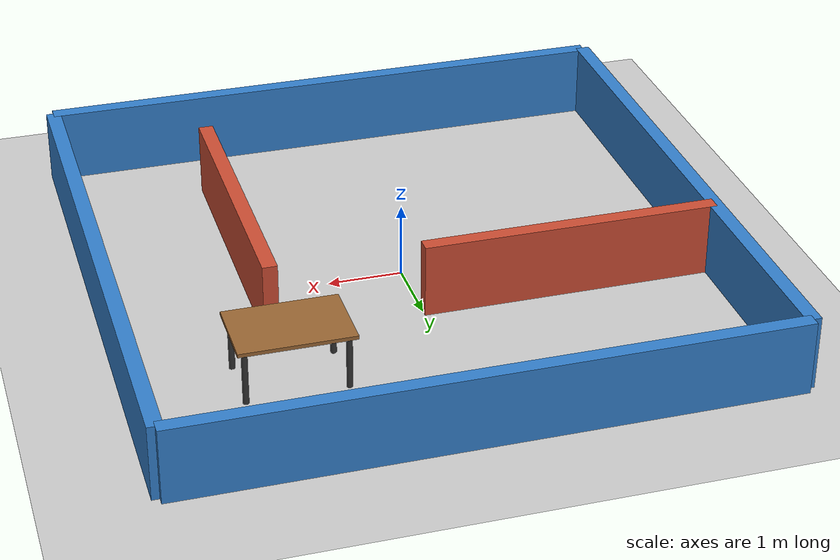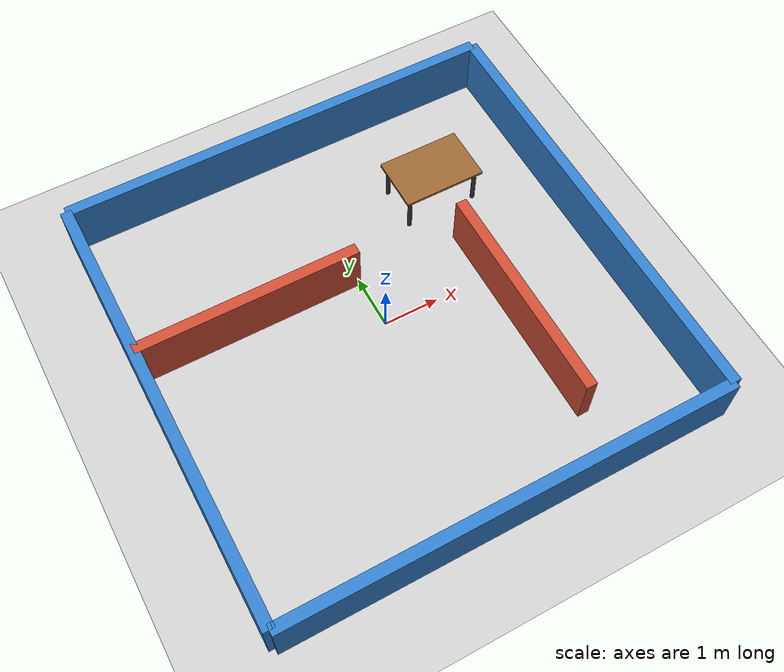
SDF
<?xml version='1.0' encoding='utf-8'?>
<sdf version='1.9'>
  <world name='maze_and_table_world'>
    <!-- PLUGINS BASE DE FÍSICAS -->
    <physics name='1ms' type='ignored'>
      <max_step_size>0.001</max_step_size>
      <real_time_factor>1</real_time_factor>
      <real_time_update_rate>1000</real_time_update_rate>
    </physics>
    <plugin name='gz::sim::systems::Physics' filename='ignition-gazebo-physics-system'/>
    <plugin name='gz::sim::systems::UserCommands' filename='ignition-gazebo-user-commands-system'/>
    <plugin name='gz::sim::systems::SceneBroadcaster' filename='ignition-gazebo-scene-broadcaster-system'/>
    <plugin name='gz::sim::systems::Contact' filename='ignition-gazebo-contact-system'/>
    <gravity>0 0 -9.8</gravity>
    <magnetic_field>6e-06 2.3e-05 -4.2e-05</magnetic_field>
    <atmosphere type='adiabatic'/>

    <scene>
      <ambient>0.4 0.4 0.4 1</ambient>
      <background>0.7 0.7 0.7 1</background>
      <shadows>true</shadows>
    </scene>

    <!-- SOL Y LUZ -->
    <light name='sun' type='directional'>
      <pose>0 0 10 0 0 0</pose>
      <cast_shadows>true</cast_shadows>
      <intensity>1</intensity>
      <direction>-0.5 0.1 -0.9</direction>
      <diffuse>0.8 0.8 0.8 1</diffuse>
      <specular>0.2 0.2 0.2 1</specular>
      <attenuation>
        <range>1000</range>
        <linear>0.01</linear>
        <constant>0.9</constant>
        <quadratic>0.001</quadratic>
      </attenuation>
    </light>

    <!-- PLANO DEL SUELO -->
    <model name='ground_plane'>
      <static>true</static>
      <link name='link'>
        <collision name='collision'>
          <geometry>
            <plane>
              <normal>0 0 1</normal>
              <size>100 100</size>
            </plane>
          </geometry>
        </collision>
        <visual name='visual'>
          <geometry>
            <plane>
              <normal>0 0 1</normal>
              <size>100 100</size>
            </plane>
          </geometry>
          <material>
            <ambient>0.8 0.8 0.8 1</ambient>
            <diffuse>0.8 0.8 0.8 1</diffuse>
            <specular>0.8 0.8 0.8 1</specular>
          </material>
        </visual>
      </link>
    </model>

    <!-- MODELO 1: EL LABERINTO (Un solo modelo estático con múltiples paredes) -->
    <model name='simple_maze'>
      <static>true</static> <!-- Al ser true, no necesitamos definir inercias -->
      <pose>0 0 0 0 0 0</pose>
      <link name='maze_walls'>

        <!-- Pared Norte -->
        <collision name='wall_n_col'><pose>0 4 0.5 0 0 0</pose><geometry><box><size>8 0.2 1</size></box></geometry></collision>
        <visual name='wall_n_vis'><pose>0 4 0.5 0 0 0</pose><geometry><box><size>8 0.2 1</size></box></geometry><material><ambient>0.2 0.5 0.8 1</ambient><diffuse>0.2 0.5 0.8 1</diffuse></material></visual>

        <!-- Pared Sur -->
        <collision name='wall_s_col'><pose>0 -4 0.5 0 0 0</pose><geometry><box><size>8 0.2 1</size></box></geometry></collision>
        <visual name='wall_s_vis'><pose>0 -4 0.5 0 0 0</pose><geometry><box><size>8 0.2 1</size></box></geometry><material><ambient>0.2 0.5 0.8 1</ambient><diffuse>0.2 0.5 0.8 1</diffuse></material></visual>

        <!-- Pared Oeste -->
        <collision name='wall_w_col'><pose>-4 0 0.5 0 0 0</pose><geometry><box><size>0.2 8 1</size></box></geometry></collision>
        <visual name='wall_w_vis'><pose>-4 0 0.5 0 0 0</pose><geometry><box><size>0.2 8 1</size></box></geometry><material><ambient>0.2 0.5 0.8 1</ambient><diffuse>0.2 0.5 0.8 1</diffuse></material></visual>

        <!-- Pared Este -->
        <collision name='wall_e_col'><pose>4 0 0.5 0 0 0</pose><geometry><box><size>0.2 8 1</size></box></geometry></collision>
        <visual name='wall_e_vis'><pose>4 0 0.5 0 0 0</pose><geometry><box><size>0.2 8 1</size></box></geometry><material><ambient>0.2 0.5 0.8 1</ambient><diffuse>0.2 0.5 0.8 1</diffuse></material></visual>

        <!-- Obstáculo Interno 1 -->
        <collision name='obs_1_col'><pose>-2 1 0.5 0 0 0</pose><geometry><box><size>4 0.2 1</size></box></geometry></collision>
        <visual name='obs_1_vis'><pose>-2 1 0.5 0 0 0</pose><geometry><box><size>4 0.2 1</size></box></geometry><material><ambient>0.8 0.3 0.2 1</ambient><diffuse>0.8 0.3 0.2 1</diffuse></material></visual>

        <!-- Obstáculo Interno 2 -->
        <collision name='obs_2_col'><pose>2 -1 0.5 0 0 0</pose><geometry><box><size>0.2 4 1</size></box></geometry></collision>
        <visual name='obs_2_vis'><pose>2 -1 0.5 0 0 0</pose><geometry><box><size>0.2 4 1</size></box></geometry><material><ambient>0.8 0.3 0.2 1</ambient><diffuse>0.8 0.3 0.2 1</diffuse></material></visual>
      </link>
    </model>

    <!-- MODELO 2: LA MESA -->
    <model name='custom_table'>
      <static>true</static>
      <!-- Posicionamos la mesa dentro del laberinto -->
      <pose>2 2 0 0 0 0</pose>
      <link name='table_parts'>

        <!-- Superficie de la mesa -->
        <collision name='top_col'><pose>0 0 0.75 0 0 0</pose><geometry><box><size>1.5 1.0 0.05</size></box></geometry></collision>
        <visual name='top_vis'><pose>0 0 0.75 0 0 0</pose><geometry><box><size>1.5 1.0 0.05</size></box></geometry><material><ambient>0.6 0.4 0.2 1</ambient><diffuse>0.6 0.4 0.2 1</diffuse></material></visual>

        <!-- Pata 1 -->
        <collision name='leg1_col'><pose>0.65 0.4 0.375 0 0 0</pose><geometry><cylinder><radius>0.04</radius><length>0.75</length></cylinder></geometry></collision>
        <visual name='leg1_vis'><pose>0.65 0.4 0.375 0 0 0</pose><geometry><cylinder><radius>0.04</radius><length>0.75</length></cylinder></geometry><material><ambient>0.2 0.2 0.2 1</ambient><diffuse>0.2 0.2 0.2 1</diffuse></material></visual>

        <!-- Pata 2 -->
        <collision name='leg2_col'><pose>-0.65 0.4 0.375 0 0 0</pose><geometry><cylinder><radius>0.04</radius><length>0.75</length></cylinder></geometry></collision>
        <visual name='leg2_vis'><pose>-0.65 0.4 0.375 0 0 0</pose><geometry><cylinder><radius>0.04</radius><length>0.75</length></cylinder></geometry><material><ambient>0.2 0.2 0.2 1</ambient><diffuse>0.2 0.2 0.2 1</diffuse></material></visual>

        <!-- Pata 3 -->
        <collision name='leg3_col'><pose>0.65 -0.4 0.375 0 0 0</pose><geometry><cylinder><radius>0.04</radius><length>0.75</length></cylinder></geometry></collision>
        <visual name='leg3_vis'><pose>0.65 -0.4 0.375 0 0 0</pose><geometry><cylinder><radius>0.04</radius><length>0.75</length></cylinder></geometry><material><ambient>0.2 0.2 0.2 1</ambient><diffuse>0.2 0.2 0.2 1</diffuse></material></visual>

        <!-- Pata 4 -->
        <collision name='leg4_col'><pose>-0.65 -0.4 0.375 0 0 0</pose><geometry><cylinder><radius>0.04</radius><length>0.75</length></cylinder></geometry></collision>
        <visual name='leg4_vis'><pose>-0.65 -0.4 0.375 0 0 0</pose><geometry><cylinder><radius>0.04</radius><length>0.75</length></cylinder></geometry><material><ambient>0.2 0.2 0.2 1</ambient><diffuse>0.2 0.2 0.2 1</diffuse></material></visual>
      </link>
    </model>

  </world>
</sdf>
